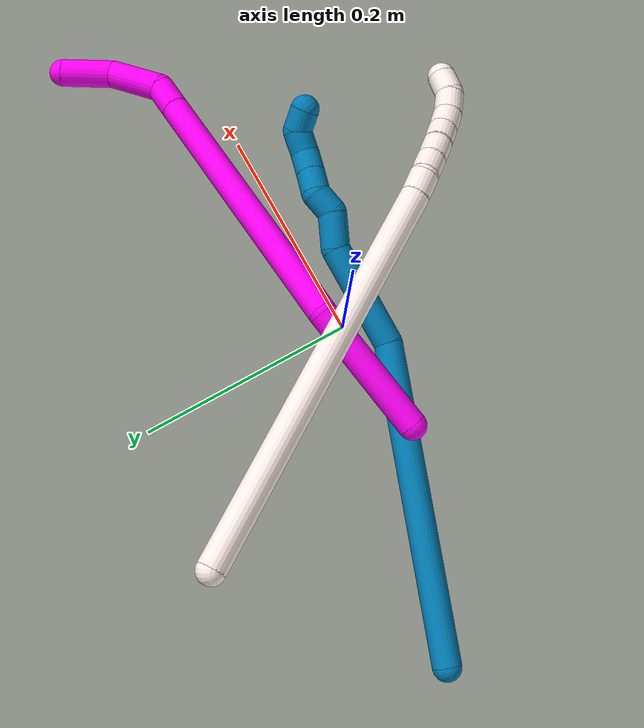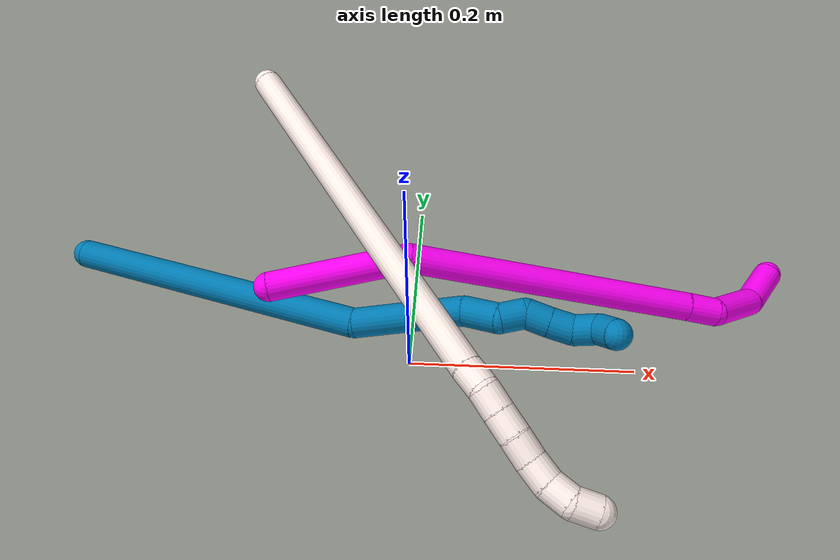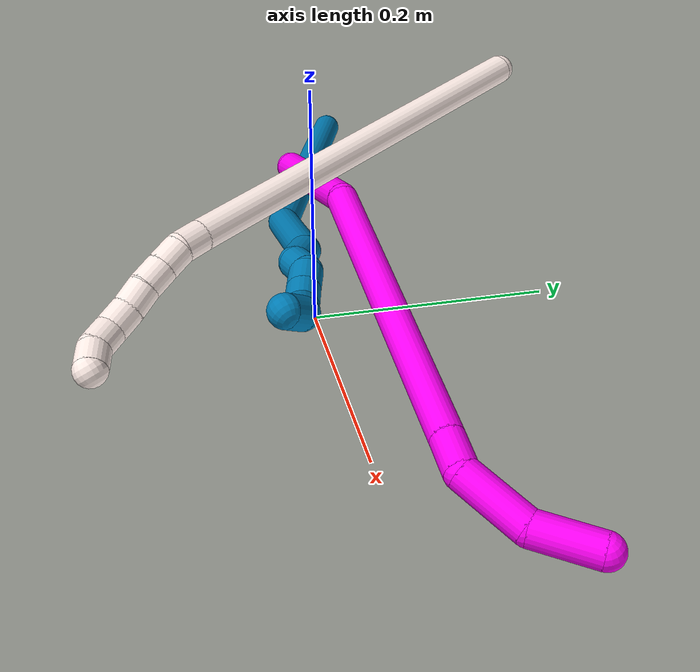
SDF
<sdf version="1.7">
 <world name="default">
  <model name="9">
   <static>0</static>
   <link name="9">
    <collision name="collision-cylinder-e_1_1_4">
     <pose>0.09927 -0.003402 0.094816 0.035866 0.80802 0.015335</pose>
     <geometry><cylinder><radius>0.0125</radius><length>0.274637</length></cylinder></geometry>
     <surface>
      <friction><ode><mu>1.16</mu><mu2>1.16</mu2><slip1>0</slip1><slip2>0</slip2></ode></friction>
      <contact><ode><kp>1e+06</kp><kd>1</kd><max_vel>0</max_vel><min_depth>0.001</min_depth></ode></contact>
     </surface>
    </collision>
    <visual name="visual-cylinder-e_1_1_4">
     <pose>0.09927 -0.003402 0.094816 0.035866 0.80802 0.015335</pose>
     <geometry><cylinder><radius>0.0125</radius><length>0.274637</length></cylinder></geometry>
     <material><ambient>0 0.490196 0.709804 1</ambient></material>
    </visual>
    <collision name="collision-cylinder-e_2_4_5">
     <pose>0.222689 -0.021629 0.225973 0.387328 0.551592 0.110895</pose>
     <geometry><cylinder><radius>0.0125</radius><length>0.092163</length></cylinder></geometry>
     <surface>
      <friction><ode><mu>1.16</mu><mu2>1.16</mu2><slip1>0</slip1><slip2>0</slip2></ode></friction>
      <contact><ode><kp>1e+06</kp><kd>1</kd><max_vel>0</max_vel><min_depth>0.001</min_depth></ode></contact>
     </surface>
    </collision>
    <visual name="visual-cylinder-e_2_4_5">
     <pose>0.222689 -0.021629 0.225973 0.387328 0.551592 0.110895</pose>
     <geometry><cylinder><radius>0.0125</radius><length>0.092163</length></cylinder></geometry>
     <material><ambient>0 0.490196 0.709804 1</ambient></material>
    </visual>
    <collision name="collision-cylinder-e_3_5_6">
     <pose>0.259533 -0.037741 0.271592 0.137916 0.935037 0.069709</pose>
     <geometry><cylinder><radius>0.0125</radius><length>0.031554</length></cylinder></geometry>
     <surface>
      <friction><ode><mu>1.16</mu><mu2>1.16</mu2><slip1>0</slip1><slip2>0</slip2></ode></friction>
      <contact><ode><kp>1e+06</kp><kd>1</kd><max_vel>0</max_vel><min_depth>0.001</min_depth></ode></contact>
     </surface>
    </collision>
    <visual name="visual-cylinder-e_3_5_6">
     <pose>0.259533 -0.037741 0.271592 0.137916 0.935037 0.069709</pose>
     <geometry><cylinder><radius>0.0125</radius><length>0.031554</length></cylinder></geometry>
     <material><ambient>0 0.490196 0.709804 1</ambient></material>
    </visual>
    <collision name="collision-cylinder-e_4_6_7">
     <pose>0.275822 -0.042852 0.290109 0.392438 0.345123 0.069264</pose>
     <geometry><cylinder><radius>0.0125</radius><length>0.021248</length></cylinder></geometry>
     <surface>
      <friction><ode><mu>1.16</mu><mu2>1.16</mu2><slip1>0</slip1><slip2>0</slip2></ode></friction>
      <contact><ode><kp>1e+06</kp><kd>1</kd><max_vel>0</max_vel><min_depth>0.001</min_depth></ode></contact>
     </surface>
    </collision>
    <visual name="visual-cylinder-e_4_6_7">
     <pose>0.275822 -0.042852 0.290109 0.392438 0.345123 0.069264</pose>
     <geometry><cylinder><radius>0.0125</radius><length>0.021248</length></cylinder></geometry>
     <material><ambient>0 0.490196 0.709804 1</ambient></material>
    </visual>
    <collision name="collision-cylinder-e_5_7_8">
     <pose>0.285326 -0.04514 0.307514 -0.185875 0.618135 -0.059504</pose>
     <geometry><cylinder><radius>0.0125</radius><length>0.020395</length></cylinder></geometry>
     <surface>
      <friction><ode><mu>1.16</mu><mu2>1.16</mu2><slip1>0</slip1><slip2>0</slip2></ode></friction>
      <contact><ode><kp>1e+06</kp><kd>1</kd><max_vel>0</max_vel><min_depth>0.001</min_depth></ode></contact>
     </surface>
    </collision>
    <visual name="visual-cylinder-e_5_7_8">
     <pose>0.285326 -0.04514 0.307514 -0.185875 0.618135 -0.059504</pose>
     <geometry><cylinder><radius>0.0125</radius><length>0.020395</length></cylinder></geometry>
     <material><ambient>0 0.490196 0.709804 1</ambient></material>
    </visual>
    <collision name="collision-cylinder-e_6_8_9">
     <pose>0.297066 -0.042644 0.323749 -0.118466 0.62247 -0.038149</pose>
     <geometry><cylinder><radius>0.0125</radius><length>0.020001</length></cylinder></geometry>
     <surface>
      <friction><ode><mu>1.16</mu><mu2>1.16</mu2><slip1>0</slip1><slip2>0</slip2></ode></friction>
      <contact><ode><kp>1e+06</kp><kd>1</kd><max_vel>0</max_vel><min_depth>0.001</min_depth></ode></contact>
     </surface>
    </collision>
    <visual name="visual-cylinder-e_6_8_9">
     <pose>0.297066 -0.042644 0.323749 -0.118466 0.62247 -0.038149</pose>
     <geometry><cylinder><radius>0.0125</radius><length>0.020001</length></cylinder></geometry>
     <material><ambient>0 0.490196 0.709804 1</ambient></material>
    </visual>
    <collision name="collision-cylinder-e_7_9_10">
     <pose>0.309643 -0.044673 0.338567 0.416959 0.740359 0.163827</pose>
     <geometry><cylinder><radius>0.0125</radius><length>0.020001</length></cylinder></geometry>
     <surface>
      <friction><ode><mu>1.16</mu><mu2>1.16</mu2><slip1>0</slip1><slip2>0</slip2></ode></friction>
      <contact><ode><kp>1e+06</kp><kd>1</kd><max_vel>0</max_vel><min_depth>0.001</min_depth></ode></contact>
     </surface>
    </collision>
    <visual name="visual-cylinder-e_7_9_10">
     <pose>0.309643 -0.044673 0.338567 0.416959 0.740359 0.163827</pose>
     <geometry><cylinder><radius>0.0125</radius><length>0.020001</length></cylinder></geometry>
     <material><ambient>0 0.490196 0.709804 1</ambient></material>
    </visual>
    <collision name="collision-cylinder-e_8_10_2">
     <pose>0.326277 -0.048918 0.346127 0.997763 1.42097 0.876709</pose>
     <geometry><cylinder><radius>0.0125</radius><length>0.02</length></cylinder></geometry>
     <surface>
      <friction><ode><mu>1.16</mu><mu2>1.16</mu2><slip1>0</slip1><slip2>0</slip2></ode></friction>
      <contact><ode><kp>1e+06</kp><kd>1</kd><max_vel>0</max_vel><min_depth>0.001</min_depth></ode></contact>
     </surface>
    </collision>
    <visual name="visual-cylinder-e_8_10_2">
     <pose>0.326277 -0.048918 0.346127 0.997763 1.42097 0.876709</pose>
     <geometry><cylinder><radius>0.0125</radius><length>0.02</length></cylinder></geometry>
     <material><ambient>0 0.490196 0.709804 1</ambient></material>
    </visual>
    <collision name="collision-sphere-2">
     <pose>0.336165 -0.050172 0.346936 0 -0 0</pose>
     <geometry><sphere><radius>0.0125</radius></sphere></geometry>
     <surface>
      <friction><ode><mu>1.16</mu><mu2>1.16</mu2><slip1>0</slip1><slip2>0</slip2></ode></friction>
      <contact><ode><kp>1e+06</kp><kd>1</kd><max_vel>0</max_vel><min_depth>0.001</min_depth></ode></contact>
     </surface>
    </collision>
    <visual name="visual-sphere-2">
     <pose>0.336165 -0.050172 0.346936 0 -0 0</pose>
     <geometry><sphere><radius>0.0125</radius></sphere></geometry>
     <material><ambient>0 0.490196 0.709804 1</ambient></material>
    </visual>
    <collision name="collision-sphere-10">
     <pose>0.316389 -0.047663 0.345318 0 -0 0</pose>
     <geometry><sphere><radius>0.0125</radius></sphere></geometry>
     <surface>
      <friction><ode><mu>1.16</mu><mu2>1.16</mu2><slip1>0</slip1><slip2>0</slip2></ode></friction>
      <contact><ode><kp>1e+06</kp><kd>1</kd><max_vel>0</max_vel><min_depth>0.001</min_depth></ode></contact>
     </surface>
    </collision>
    <visual name="visual-sphere-10">
     <pose>0.316389 -0.047663 0.345318 0 -0 0</pose>
     <geometry><sphere><radius>0.0125</radius></sphere></geometry>
     <material><ambient>0 0.490196 0.709804 1</ambient></material>
    </visual>
    <collision name="collision-sphere-9">
     <pose>0.302897 -0.041684 0.331817 0 -0 0</pose>
     <geometry><sphere><radius>0.0125</radius></sphere></geometry>
     <surface>
      <friction><ode><mu>1.16</mu><mu2>1.16</mu2><slip1>0</slip1><slip2>0</slip2></ode></friction>
      <contact><ode><kp>1e+06</kp><kd>1</kd><max_vel>0</max_vel><min_depth>0.001</min_depth></ode></contact>
     </surface>
    </collision>
    <visual name="visual-sphere-9">
     <pose>0.302897 -0.041684 0.331817 0 -0 0</pose>
     <geometry><sphere><radius>0.0125</radius></sphere></geometry>
     <material><ambient>0 0.490196 0.709804 1</ambient></material>
    </visual>
    <collision name="collision-sphere-4">
     <pose>0.198541 -0.006804 0.189633 0 -0 0</pose>
     <geometry><sphere><radius>0.0125</radius></sphere></geometry>
     <surface>
      <friction><ode><mu>1.16</mu><mu2>1.16</mu2><slip1>0</slip1><slip2>0</slip2></ode></friction>
      <contact><ode><kp>1e+06</kp><kd>1</kd><max_vel>0</max_vel><min_depth>0.001</min_depth></ode></contact>
     </surface>
    </collision>
    <visual name="visual-sphere-4">
     <pose>0.198541 -0.006804 0.189633 0 -0 0</pose>
     <geometry><sphere><radius>0.0125</radius></sphere></geometry>
     <material><ambient>0 0.490196 0.709804 1</ambient></material>
    </visual>
    <collision name="collision-sphere-1">
     <geometry><sphere><radius>0.0125</radius></sphere></geometry>
     <surface>
      <friction><ode><mu>1.16</mu><mu2>1.16</mu2><slip1>0</slip1><slip2>0</slip2></ode></friction>
      <contact><ode><kp>1e+06</kp><kd>1</kd><max_vel>0</max_vel><min_depth>0.001</min_depth></ode></contact>
     </surface>
    </collision>
    <visual name="visual-sphere-1">
     <geometry><sphere><radius>0.0125</radius></sphere></geometry>
     <material><ambient>0 0.490196 0.709804 1</ambient></material>
    </visual>
    <collision name="collision-sphere-8">
     <pose>0.291235 -0.043604 0.315681 0 -0 0</pose>
     <geometry><sphere><radius>0.0125</radius></sphere></geometry>
     <surface>
      <friction><ode><mu>1.16</mu><mu2>1.16</mu2><slip1>0</slip1><slip2>0</slip2></ode></friction>
      <contact><ode><kp>1e+06</kp><kd>1</kd><max_vel>0</max_vel><min_depth>0.001</min_depth></ode></contact>
     </surface>
    </collision>
    <visual name="visual-sphere-8">
     <pose>0.291235 -0.043604 0.315681 0 -0 0</pose>
     <geometry><sphere><radius>0.0125</radius></sphere></geometry>
     <material><ambient>0 0.490196 0.709804 1</ambient></material>
    </visual>
    <collision name="collision-sphere-5">
     <pose>0.246838 -0.036453 0.262313 0 -0 0</pose>
     <geometry><sphere><radius>0.0125</radius></sphere></geometry>
     <surface>
      <friction><ode><mu>1.16</mu><mu2>1.16</mu2><slip1>0</slip1><slip2>0</slip2></ode></friction>
      <contact><ode><kp>1e+06</kp><kd>1</kd><max_vel>0</max_vel><min_depth>0.001</min_depth></ode></contact>
     </surface>
    </collision>
    <visual name="visual-sphere-5">
     <pose>0.246838 -0.036453 0.262313 0 -0 0</pose>
     <geometry><sphere><radius>0.0125</radius></sphere></geometry>
     <material><ambient>0 0.490196 0.709804 1</ambient></material>
    </visual>
    <collision name="collision-sphere-6">
     <pose>0.272227 -0.039029 0.280872 0 -0 0</pose>
     <geometry><sphere><radius>0.0125</radius></sphere></geometry>
     <surface>
      <friction><ode><mu>1.16</mu><mu2>1.16</mu2><slip1>0</slip1><slip2>0</slip2></ode></friction>
      <contact><ode><kp>1e+06</kp><kd>1</kd><max_vel>0</max_vel><min_depth>0.001</min_depth></ode></contact>
     </surface>
    </collision>
    <visual name="visual-sphere-6">
     <pose>0.272227 -0.039029 0.280872 0 -0 0</pose>
     <geometry><sphere><radius>0.0125</radius></sphere></geometry>
     <material><ambient>0 0.490196 0.709804 1</ambient></material>
    </visual>
    <collision name="collision-sphere-7">
     <pose>0.279416 -0.046676 0.299347 0 -0 0</pose>
     <geometry><sphere><radius>0.0125</radius></sphere></geometry>
     <surface>
      <friction><ode><mu>1.16</mu><mu2>1.16</mu2><slip1>0</slip1><slip2>0</slip2></ode></friction>
      <contact><ode><kp>1e+06</kp><kd>1</kd><max_vel>0</max_vel><min_depth>0.001</min_depth></ode></contact>
     </surface>
    </collision>
    <visual name="visual-sphere-7">
     <pose>0.279416 -0.046676 0.299347 0 -0 0</pose>
     <geometry><sphere><radius>0.0125</radius></sphere></geometry>
     <material><ambient>0 0.490196 0.709804 1</ambient></material>
    </visual>
    <inertial>
     <pose>0.172634 -0.017349 0.176084 0 -0 0</pose>
     <mass>0.5</mass>
     <inertia>
      <ixx>0.001317</ixx>
      <ixy>0</ixy>
      <ixz>0</ixz>
      <iyy>0.001834</iyy>
      <iyz>0</iyz>
      <izz>-0.001206</izz>
     </inertia>
    </inertial>
   </link>
   <pose>-0.30192 0.073177 0.051674 -1.98964 -0.434645 -1.03333</pose>
  </model>
  <model name="10">
   <static>0</static>
   <link name="10">
    <collision name="collision-cylinder-e_1_1_4">
     <pose>0.057004 0.017957 0.003976 -1.3529 1.2587 -1.05795</pose>
     <geometry><cylinder><radius>0.0125</radius><length>0.119795</length></cylinder></geometry>
     <surface>
      <friction><ode><mu>1.16</mu><mu2>1.16</mu2><slip1>0</slip1><slip2>0</slip2></ode></friction>
      <contact><ode><kp>1e+06</kp><kd>1</kd><max_vel>0</max_vel><min_depth>0.001</min_depth></ode></contact>
     </surface>
    </collision>
    <visual name="visual-cylinder-e_1_1_4">
     <pose>0.057004 0.017957 0.003976 -1.3529 1.2587 -1.05795</pose>
     <geometry><cylinder><radius>0.0125</radius><length>0.119795</length></cylinder></geometry>
     <material><ambient>1 0 0.964706 1</ambient></material>
    </visual>
    <collision name="collision-cylinder-e_2_4_5">
     <pose>0.233577 0.046394 -0.029044 -2.86554 1.25966 -2.76494</pose>
     <geometry><cylinder><radius>0.0125</radius><length>0.251199</length></cylinder></geometry>
     <surface>
      <friction><ode><mu>1.16</mu><mu2>1.16</mu2><slip1>0</slip1><slip2>0</slip2></ode></friction>
      <contact><ode><kp>1e+06</kp><kd>1</kd><max_vel>0</max_vel><min_depth>0.001</min_depth></ode></contact>
     </surface>
    </collision>
    <visual name="visual-cylinder-e_2_4_5">
     <pose>0.233577 0.046394 -0.029044 -2.86554 1.25966 -2.76494</pose>
     <geometry><cylinder><radius>0.0125</radius><length>0.251199</length></cylinder></geometry>
     <material><ambient>1 0 0.964706 1</ambient></material>
    </visual>
    <collision name="collision-cylinder-e_3_5_6">
     <pose>0.366524 0.057879 -0.070318 -2.91091 1.25336 -2.82425</pose>
     <geometry><cylinder><radius>0.0125</radius><length>0.028162</length></cylinder></geometry>
     <surface>
      <friction><ode><mu>1.16</mu><mu2>1.16</mu2><slip1>0</slip1><slip2>0</slip2></ode></friction>
      <contact><ode><kp>1e+06</kp><kd>1</kd><max_vel>0</max_vel><min_depth>0.001</min_depth></ode></contact>
     </surface>
    </collision>
    <visual name="visual-cylinder-e_3_5_6">
     <pose>0.366524 0.057879 -0.070318 -2.91091 1.25336 -2.82425</pose>
     <geometry><cylinder><radius>0.0125</radius><length>0.028162</length></cylinder></geometry>
     <material><ambient>1 0 0.964706 1</ambient></material>
    </visual>
    <collision name="collision-cylinder-e_4_6_7">
     <pose>0.398221 0.073158 -0.087477 -2.3049 0.76126 -1.46566</pose>
     <geometry><cylinder><radius>0.0125</radius><length>0.053114</length></cylinder></geometry>
     <surface>
      <friction><ode><mu>1.16</mu><mu2>1.16</mu2><slip1>0</slip1><slip2>0</slip2></ode></friction>
      <contact><ode><kp>1e+06</kp><kd>1</kd><max_vel>0</max_vel><min_depth>0.001</min_depth></ode></contact>
     </surface>
    </collision>
    <visual name="visual-cylinder-e_4_6_7">
     <pose>0.398221 0.073158 -0.087477 -2.3049 0.76126 -1.46566</pose>
     <geometry><cylinder><radius>0.0125</radius><length>0.053114</length></cylinder></geometry>
     <material><ambient>1 0 0.964706 1</ambient></material>
    </visual>
    <collision name="collision-cylinder-e_5_7_2">
     <pose>0.427267 0.107308 -0.108067 -1.9408 0.46614 -0.667445</pose>
     <geometry><cylinder><radius>0.0125</radius><length>0.04773</length></cylinder></geometry>
     <surface>
      <friction><ode><mu>1.16</mu><mu2>1.16</mu2><slip1>0</slip1><slip2>0</slip2></ode></friction>
      <contact><ode><kp>1e+06</kp><kd>1</kd><max_vel>0</max_vel><min_depth>0.001</min_depth></ode></contact>
     </surface>
    </collision>
    <visual name="visual-cylinder-e_5_7_2">
     <pose>0.427267 0.107308 -0.108067 -1.9408 0.46614 -0.667445</pose>
     <geometry><cylinder><radius>0.0125</radius><length>0.04773</length></cylinder></geometry>
     <material><ambient>1 0 0.964706 1</ambient></material>
    </visual>
    <collision name="collision-sphere-2">
     <pose>0.437993 0.127184 -0.115776 0 -0 0</pose>
     <geometry><sphere><radius>0.0125</radius></sphere></geometry>
     <surface>
      <friction><ode><mu>1.16</mu><mu2>1.16</mu2><slip1>0</slip1><slip2>0</slip2></ode></friction>
      <contact><ode><kp>1e+06</kp><kd>1</kd><max_vel>0</max_vel><min_depth>0.001</min_depth></ode></contact>
     </surface>
    </collision>
    <visual name="visual-sphere-2">
     <pose>0.437993 0.127184 -0.115776 0 -0 0</pose>
     <geometry><sphere><radius>0.0125</radius></sphere></geometry>
     <material><ambient>1 0 0.964706 1</ambient></material>
    </visual>
    <collision name="collision-sphere-7">
     <pose>0.416541 0.087432 -0.100357 0 -0 0</pose>
     <geometry><sphere><radius>0.0125</radius></sphere></geometry>
     <surface>
      <friction><ode><mu>1.16</mu><mu2>1.16</mu2><slip1>0</slip1><slip2>0</slip2></ode></friction>
      <contact><ode><kp>1e+06</kp><kd>1</kd><max_vel>0</max_vel><min_depth>0.001</min_depth></ode></contact>
     </surface>
    </collision>
    <visual name="visual-sphere-7">
     <pose>0.416541 0.087432 -0.100357 0 -0 0</pose>
     <geometry><sphere><radius>0.0125</radius></sphere></geometry>
     <material><ambient>1 0 0.964706 1</ambient></material>
    </visual>
    <collision name="collision-sphere-6">
     <pose>0.379901 0.058884 -0.074597 0 -0 0</pose>
     <geometry><sphere><radius>0.0125</radius></sphere></geometry>
     <surface>
      <friction><ode><mu>1.16</mu><mu2>1.16</mu2><slip1>0</slip1><slip2>0</slip2></ode></friction>
      <contact><ode><kp>1e+06</kp><kd>1</kd><max_vel>0</max_vel><min_depth>0.001</min_depth></ode></contact>
     </surface>
    </collision>
    <visual name="visual-sphere-6">
     <pose>0.379901 0.058884 -0.074597 0 -0 0</pose>
     <geometry><sphere><radius>0.0125</radius></sphere></geometry>
     <material><ambient>1 0 0.964706 1</ambient></material>
    </visual>
    <collision name="collision-sphere-5">
     <pose>0.353146 0.056874 -0.066039 0 -0 0</pose>
     <geometry><sphere><radius>0.0125</radius></sphere></geometry>
     <surface>
      <friction><ode><mu>1.16</mu><mu2>1.16</mu2><slip1>0</slip1><slip2>0</slip2></ode></friction>
      <contact><ode><kp>1e+06</kp><kd>1</kd><max_vel>0</max_vel><min_depth>0.001</min_depth></ode></contact>
     </surface>
    </collision>
    <visual name="visual-sphere-5">
     <pose>0.353146 0.056874 -0.066039 0 -0 0</pose>
     <geometry><sphere><radius>0.0125</radius></sphere></geometry>
     <material><ambient>1 0 0.964706 1</ambient></material>
    </visual>
    <collision name="collision-sphere-1">
     <geometry><sphere><radius>0.0125</radius></sphere></geometry>
     <surface>
      <friction><ode><mu>1.16</mu><mu2>1.16</mu2><slip1>0</slip1><slip2>0</slip2></ode></friction>
      <contact><ode><kp>1e+06</kp><kd>1</kd><max_vel>0</max_vel><min_depth>0.001</min_depth></ode></contact>
     </surface>
    </collision>
    <visual name="visual-sphere-1">
     <geometry><sphere><radius>0.0125</radius></sphere></geometry>
     <material><ambient>1 0 0.964706 1</ambient></material>
    </visual>
    <collision name="collision-sphere-4">
     <pose>0.114008 0.035913 0.007952 0 -0 0</pose>
     <geometry><sphere><radius>0.0125</radius></sphere></geometry>
     <surface>
      <friction><ode><mu>1.16</mu><mu2>1.16</mu2><slip1>0</slip1><slip2>0</slip2></ode></friction>
      <contact><ode><kp>1e+06</kp><kd>1</kd><max_vel>0</max_vel><min_depth>0.001</min_depth></ode></contact>
     </surface>
    </collision>
    <visual name="visual-sphere-4">
     <pose>0.114008 0.035913 0.007952 0 -0 0</pose>
     <geometry><sphere><radius>0.0125</radius></sphere></geometry>
     <material><ambient>1 0 0.964706 1</ambient></material>
    </visual>
    <inertial>
     <pose>0.234739 0.048885 -0.037208 0 -0 0</pose>
     <mass>0.5</mass>
     <inertia>
      <ixx>-0.000521</ixx>
      <ixy>0</ixy>
      <ixz>0</ixz>
      <iyy>0.001266</iyy>
      <iyz>0</iyz>
      <izz>-0.001607</izz>
     </inertia>
    </inertial>
   </link>
   <pose>-0.116285 0.003241 0.089485 0.268132 -0.012789 -0.100864</pose>
  </model>
  <model name="11">
   <static>0</static>
   <link name="11">
    <collision name="collision-cylinder-e_1_1_4">
     <pose>0.104795 -0.145539 -0.001931 1.58406 0.624013 0.631806</pose>
     <geometry><cylinder><radius>0.0125</radius><length>0.358704</length></cylinder></geometry>
     <surface>
      <friction><ode><mu>1.16</mu><mu2>1.16</mu2><slip1>0</slip1><slip2>0</slip2></ode></friction>
      <contact><ode><kp>1e+06</kp><kd>1</kd><max_vel>0</max_vel><min_depth>0.001</min_depth></ode></contact>
     </surface>
    </collision>
    <visual name="visual-cylinder-e_1_1_4">
     <pose>0.104795 -0.145539 -0.001931 1.58406 0.624013 0.631806</pose>
     <geometry><cylinder><radius>0.0125</radius><length>0.358704</length></cylinder></geometry>
     <material><ambient>1 0.933333 0.909804 1</ambient></material>
    </visual>
    <collision name="collision-cylinder-e_2_4_5">
     <pose>0.215172 -0.299913 -0.003684 1.55065 0.56341 0.552742</pose>
     <geometry><cylinder><radius>0.0125</radius><length>0.020906</length></cylinder></geometry>
     <surface>
      <friction><ode><mu>1.16</mu><mu2>1.16</mu2><slip1>0</slip1><slip2>0</slip2></ode></friction>
      <contact><ode><kp>1e+06</kp><kd>1</kd><max_vel>0</max_vel><min_depth>0.001</min_depth></ode></contact>
     </surface>
    </collision>
    <visual name="visual-cylinder-e_2_4_5">
     <pose>0.215172 -0.299913 -0.003684 1.55065 0.56341 0.552742</pose>
     <geometry><cylinder><radius>0.0125</radius><length>0.020906</length></cylinder></geometry>
     <material><ambient>1 0.933333 0.909804 1</ambient></material>
    </visual>
    <collision name="collision-cylinder-e_3_5_6">
     <pose>0.227268 -0.315944 -0.000727 1.20229 0.701219 0.491495</pose>
     <geometry><cylinder><radius>0.0125</radius><length>0.02019</length></cylinder></geometry>
     <surface>
      <friction><ode><mu>1.16</mu><mu2>1.16</mu2><slip1>0</slip1><slip2>0</slip2></ode></friction>
      <contact><ode><kp>1e+06</kp><kd>1</kd><max_vel>0</max_vel><min_depth>0.001</min_depth></ode></contact>
     </surface>
    </collision>
    <visual name="visual-cylinder-e_3_5_6">
     <pose>0.227268 -0.315944 -0.000727 1.20229 0.701219 0.491495</pose>
     <geometry><cylinder><radius>0.0125</radius><length>0.02019</length></cylinder></geometry>
     <material><ambient>1 0.933333 0.909804 1</ambient></material>
    </visual>
    <collision name="collision-cylinder-e_4_6_7">
     <pose>0.240148 -0.330368 0.004916 1.19345 0.686103 0.476085</pose>
     <geometry><cylinder><radius>0.0125</radius><length>0.020102</length></cylinder></geometry>
     <surface>
      <friction><ode><mu>1.16</mu><mu2>1.16</mu2><slip1>0</slip1><slip2>0</slip2></ode></friction>
      <contact><ode><kp>1e+06</kp><kd>1</kd><max_vel>0</max_vel><min_depth>0.001</min_depth></ode></contact>
     </surface>
    </collision>
    <visual name="visual-cylinder-e_4_6_7">
     <pose>0.240148 -0.330368 0.004916 1.19345 0.686103 0.476085</pose>
     <geometry><cylinder><radius>0.0125</radius><length>0.020102</length></cylinder></geometry>
     <material><ambient>1 0.933333 0.909804 1</ambient></material>
    </visual>
    <collision name="collision-cylinder-e_5_7_8">
     <pose>0.252898 -0.344276 0.011651 1.04569 0.691026 0.409112</pose>
     <geometry><cylinder><radius>0.0125</radius><length>0.02003</length></cylinder></geometry>
     <surface>
      <friction><ode><mu>1.16</mu><mu2>1.16</mu2><slip1>0</slip1><slip2>0</slip2></ode></friction>
      <contact><ode><kp>1e+06</kp><kd>1</kd><max_vel>0</max_vel><min_depth>0.001</min_depth></ode></contact>
     </surface>
    </collision>
    <visual name="visual-cylinder-e_5_7_8">
     <pose>0.252898 -0.344276 0.011651 1.04569 0.691026 0.409112</pose>
     <geometry><cylinder><radius>0.0125</radius><length>0.02003</length></cylinder></geometry>
     <material><ambient>1 0.933333 0.909804 1</ambient></material>
    </visual>
    <collision name="collision-cylinder-e_6_8_9">
     <pose>0.265182 -0.358482 0.018498 1.19413 0.629777 0.435847</pose>
     <geometry><cylinder><radius>0.0125</radius><length>0.020037</length></cylinder></geometry>
     <surface>
      <friction><ode><mu>1.16</mu><mu2>1.16</mu2><slip1>0</slip1><slip2>0</slip2></ode></friction>
      <contact><ode><kp>1e+06</kp><kd>1</kd><max_vel>0</max_vel><min_depth>0.001</min_depth></ode></contact>
     </surface>
    </collision>
    <visual name="visual-cylinder-e_6_8_9">
     <pose>0.265182 -0.358482 0.018498 1.19413 0.629777 0.435847</pose>
     <geometry><cylinder><radius>0.0125</radius><length>0.020037</length></cylinder></geometry>
     <material><ambient>1 0.933333 0.909804 1</ambient></material>
    </visual>
    <collision name="collision-cylinder-e_7_9_10">
     <pose>0.2746 -0.375046 0.023961 1.30235 0.359106 0.274896</pose>
     <geometry><cylinder><radius>0.0125</radius><length>0.020018</length></cylinder></geometry>
     <surface>
      <friction><ode><mu>1.16</mu><mu2>1.16</mu2><slip1>0</slip1><slip2>0</slip2></ode></friction>
      <contact><ode><kp>1e+06</kp><kd>1</kd><max_vel>0</max_vel><min_depth>0.001</min_depth></ode></contact>
     </surface>
    </collision>
    <visual name="visual-cylinder-e_7_9_10">
     <pose>0.2746 -0.375046 0.023961 1.30235 0.359106 0.274896</pose>
     <geometry><cylinder><radius>0.0125</radius><length>0.020018</length></cylinder></geometry>
     <material><ambient>1 0.933333 0.909804 1</ambient></material>
    </visual>
    <collision name="collision-cylinder-e_8_10_2">
     <pose>0.278391 -0.392501 0.031847 1.00045 0.027371 0.014962</pose>
     <geometry><cylinder><radius>0.0125</radius><length>0.020013</length></cylinder></geometry>
     <surface>
      <friction><ode><mu>1.16</mu><mu2>1.16</mu2><slip1>0</slip1><slip2>0</slip2></ode></friction>
      <contact><ode><kp>1e+06</kp><kd>1</kd><max_vel>0</max_vel><min_depth>0.001</min_depth></ode></contact>
     </surface>
    </collision>
    <visual name="visual-cylinder-e_8_10_2">
     <pose>0.278391 -0.392501 0.031847 1.00045 0.027371 0.014962</pose>
     <geometry><cylinder><radius>0.0125</radius><length>0.020013</length></cylinder></geometry>
     <material><ambient>1 0.933333 0.909804 1</ambient></material>
    </visual>
    <collision name="collision-sphere-2">
     <pose>0.278665 -0.40092 0.037248 0 -0 0</pose>
     <geometry><sphere><radius>0.0125</radius></sphere></geometry>
     <surface>
      <friction><ode><mu>1.16</mu><mu2>1.16</mu2><slip1>0</slip1><slip2>0</slip2></ode></friction>
      <contact><ode><kp>1e+06</kp><kd>1</kd><max_vel>0</max_vel><min_depth>0.001</min_depth></ode></contact>
     </surface>
    </collision>
    <visual name="visual-sphere-2">
     <pose>0.278665 -0.40092 0.037248 0 -0 0</pose>
     <geometry><sphere><radius>0.0125</radius></sphere></geometry>
     <material><ambient>1 0.933333 0.909804 1</ambient></material>
    </visual>
    <collision name="collision-sphere-10">
     <pose>0.278117 -0.384081 0.026446 0 -0 0</pose>
     <geometry><sphere><radius>0.0125</radius></sphere></geometry>
     <surface>
      <friction><ode><mu>1.16</mu><mu2>1.16</mu2><slip1>0</slip1><slip2>0</slip2></ode></friction>
      <contact><ode><kp>1e+06</kp><kd>1</kd><max_vel>0</max_vel><min_depth>0.001</min_depth></ode></contact>
     </surface>
    </collision>
    <visual name="visual-sphere-10">
     <pose>0.278117 -0.384081 0.026446 0 -0 0</pose>
     <geometry><sphere><radius>0.0125</radius></sphere></geometry>
     <material><ambient>1 0.933333 0.909804 1</ambient></material>
    </visual>
    <collision name="collision-sphere-9">
     <pose>0.271082 -0.366011 0.021476 0 -0 0</pose>
     <geometry><sphere><radius>0.0125</radius></sphere></geometry>
     <surface>
      <friction><ode><mu>1.16</mu><mu2>1.16</mu2><slip1>0</slip1><slip2>0</slip2></ode></friction>
      <contact><ode><kp>1e+06</kp><kd>1</kd><max_vel>0</max_vel><min_depth>0.001</min_depth></ode></contact>
     </surface>
    </collision>
    <visual name="visual-sphere-9">
     <pose>0.271082 -0.366011 0.021476 0 -0 0</pose>
     <geometry><sphere><radius>0.0125</radius></sphere></geometry>
     <material><ambient>1 0.933333 0.909804 1</ambient></material>
    </visual>
    <collision name="collision-sphere-4">
     <pose>0.20959 -0.291077 -0.003862 0 -0 0</pose>
     <geometry><sphere><radius>0.0125</radius></sphere></geometry>
     <surface>
      <friction><ode><mu>1.16</mu><mu2>1.16</mu2><slip1>0</slip1><slip2>0</slip2></ode></friction>
      <contact><ode><kp>1e+06</kp><kd>1</kd><max_vel>0</max_vel><min_depth>0.001</min_depth></ode></contact>
     </surface>
    </collision>
    <visual name="visual-sphere-4">
     <pose>0.20959 -0.291077 -0.003862 0 -0 0</pose>
     <geometry><sphere><radius>0.0125</radius></sphere></geometry>
     <material><ambient>1 0.933333 0.909804 1</ambient></material>
    </visual>
    <collision name="collision-sphere-1">
     <geometry><sphere><radius>0.0125</radius></sphere></geometry>
     <surface>
      <friction><ode><mu>1.16</mu><mu2>1.16</mu2><slip1>0</slip1><slip2>0</slip2></ode></friction>
      <contact><ode><kp>1e+06</kp><kd>1</kd><max_vel>0</max_vel><min_depth>0.001</min_depth></ode></contact>
     </surface>
    </collision>
    <visual name="visual-sphere-1">
     <geometry><sphere><radius>0.0125</radius></sphere></geometry>
     <material><ambient>1 0.933333 0.909804 1</ambient></material>
    </visual>
    <collision name="collision-sphere-8">
     <pose>0.259281 -0.350954 0.015519 0 -0 0</pose>
     <geometry><sphere><radius>0.0125</radius></sphere></geometry>
     <surface>
      <friction><ode><mu>1.16</mu><mu2>1.16</mu2><slip1>0</slip1><slip2>0</slip2></ode></friction>
      <contact><ode><kp>1e+06</kp><kd>1</kd><max_vel>0</max_vel><min_depth>0.001</min_depth></ode></contact>
     </surface>
    </collision>
    <visual name="visual-sphere-8">
     <pose>0.259281 -0.350954 0.015519 0 -0 0</pose>
     <geometry><sphere><radius>0.0125</radius></sphere></geometry>
     <material><ambient>1 0.933333 0.909804 1</ambient></material>
    </visual>
    <collision name="collision-sphere-5">
     <pose>0.220755 -0.308749 -0.003506 0 -0 0</pose>
     <geometry><sphere><radius>0.0125</radius></sphere></geometry>
     <surface>
      <friction><ode><mu>1.16</mu><mu2>1.16</mu2><slip1>0</slip1><slip2>0</slip2></ode></friction>
      <contact><ode><kp>1e+06</kp><kd>1</kd><max_vel>0</max_vel><min_depth>0.001</min_depth></ode></contact>
     </surface>
    </collision>
    <visual name="visual-sphere-5">
     <pose>0.220755 -0.308749 -0.003506 0 -0 0</pose>
     <geometry><sphere><radius>0.0125</radius></sphere></geometry>
     <material><ambient>1 0.933333 0.909804 1</ambient></material>
    </visual>
    <collision name="collision-sphere-6">
     <pose>0.23378 -0.323139 0.002051 0 -0 0</pose>
     <geometry><sphere><radius>0.0125</radius></sphere></geometry>
     <surface>
      <friction><ode><mu>1.16</mu><mu2>1.16</mu2><slip1>0</slip1><slip2>0</slip2></ode></friction>
      <contact><ode><kp>1e+06</kp><kd>1</kd><max_vel>0</max_vel><min_depth>0.001</min_depth></ode></contact>
     </surface>
    </collision>
    <visual name="visual-sphere-6">
     <pose>0.23378 -0.323139 0.002051 0 -0 0</pose>
     <geometry><sphere><radius>0.0125</radius></sphere></geometry>
     <material><ambient>1 0.933333 0.909804 1</ambient></material>
    </visual>
    <collision name="collision-sphere-7">
     <pose>0.246515 -0.337598 0.007782 0 -0 0</pose>
     <geometry><sphere><radius>0.0125</radius></sphere></geometry>
     <surface>
      <friction><ode><mu>1.16</mu><mu2>1.16</mu2><slip1>0</slip1><slip2>0</slip2></ode></friction>
      <contact><ode><kp>1e+06</kp><kd>1</kd><max_vel>0</max_vel><min_depth>0.001</min_depth></ode></contact>
     </surface>
    </collision>
    <visual name="visual-sphere-7">
     <pose>0.246515 -0.337598 0.007782 0 -0 0</pose>
     <geometry><sphere><radius>0.0125</radius></sphere></geometry>
     <material><ambient>1 0.933333 0.909804 1</ambient></material>
    </visual>
    <inertial>
     <pose>0.145904 -0.201874 0.002071 0 -0 0</pose>
     <mass>0.5</mass>
     <inertia>
      <ixx>0.004411</ixx>
      <ixy>0</ixy>
      <ixz>0</ixz>
      <iyy>0.003118</iyy>
      <iyz>0</iyz>
      <izz>0.000883</izz>
     </inertia>
    </inertial>
   </link>
   <pose>-0.144433 0.204259 0.155998 -2.84756 0.590344 -1.8845</pose>
  </model>
 </world>
</sdf>
